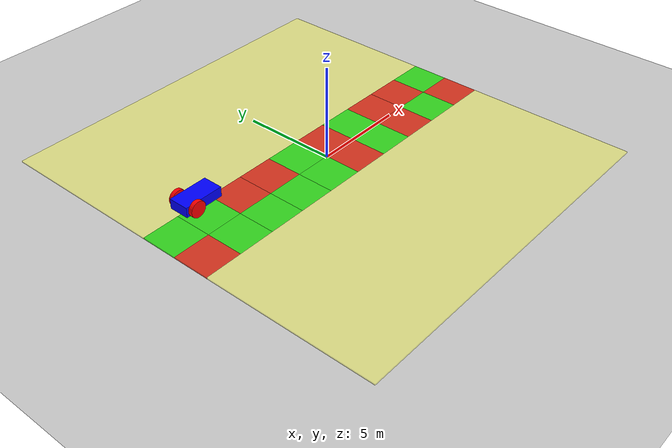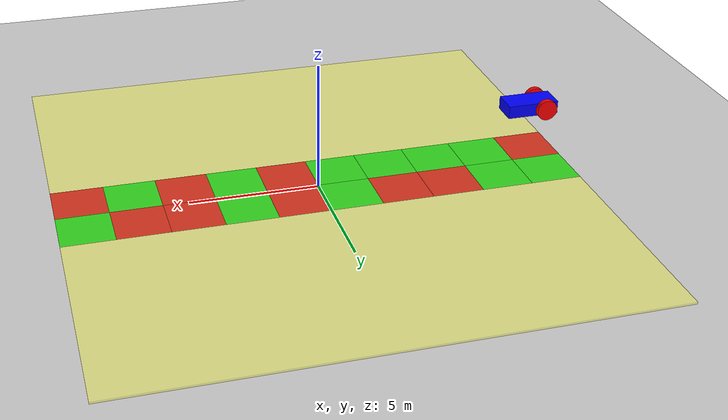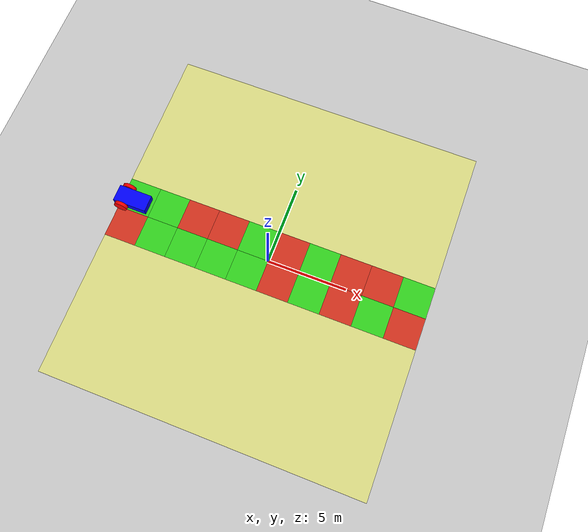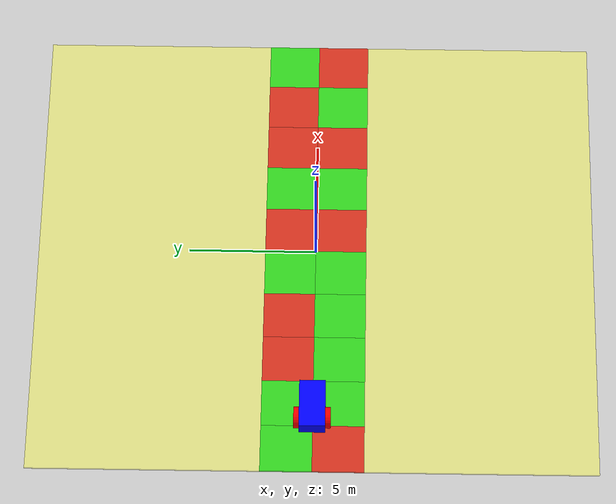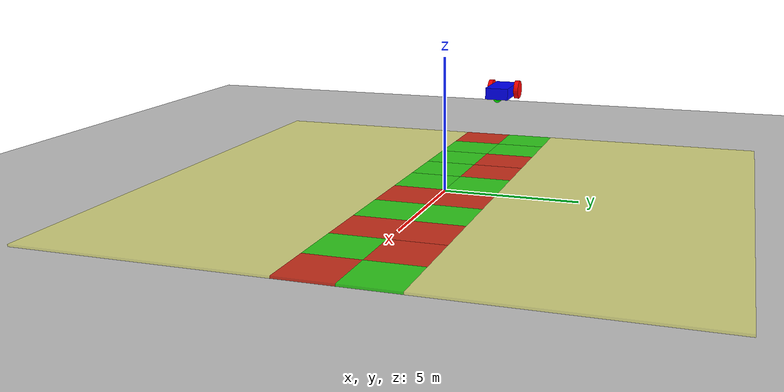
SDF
<?xml version="1.0" ?>
<sdf version="1.8">
    <world name="Moving_robot">
        <physics name="1ms" type="ignored">
            <max_step_size>0.1</max_step_size>
            <real_time_factor>1.0</real_time_factor>
        </physics>
        <plugin
            filename="libignition-gazebo-physics-system.so"
            name="ignition::gazebo::systems::Physics">
        </plugin>
        <plugin
            filename="ignition-gazebo-user-commands-system"
            name="ignition::gazebo::systems::UserCommands">
        </plugin>
        <plugin
            filename="ignition-gazebo-scene-broadcaster-system"
            name="ignition::gazebo::systems::SceneBroadcaster">
        </plugin>

        <light type="directional" name="sun">
            <cast_shadows>true</cast_shadows>
            <pose>0 0 10 0 0 0</pose>
            <diffuse>0.8 0.8 0.8 1</diffuse>
            <specular>0.2 0.2 0.2 1</specular>
            <attenuation>
                <range>1000</range>
                <constant>0.9</constant>
                <linear>0.01</linear>
                <quadratic>0.001</quadratic>
            </attenuation>
            <direction>-0.5 0.1 -0.9</direction>
        </light>

        <model name="ground_plane">
            <static>true</static>
            <link name="link">
                <collision name="collision">
                <geometry>
                    <plane>
                    <normal>0 0 1</normal>
                    </plane>
                </geometry>
                </collision>
                <visual name="visual">
                <geometry>
                    <plane>
                    <normal>0 0 1</normal>
                    <size>100 100</size>
                    </plane>
                </geometry>
                <material>
                    <ambient>0.8 0.8 0.8 1</ambient>
                    <diffuse>0.8 0.8 0.8 1</diffuse>
                    <specular>0.8 0.8 0.8 1</specular>
                </material>
                </visual>
            </link>
        </model>

        <model name='plank_left'>
            <pose>0 6.5 0 0 0 0</pose>
            <link name='link_1'>
            <pose>0 0 0 0 -0 0</pose>
            <inertial>
                <mass>54.0001</mass>
                <inertia>
                <ixx>364.546</ixx>
                <ixy>0</ixy>
                <ixz>0</ixz>
                <iyy>1800.06</iyy>
                <iyz>0</iyz>
                <izz>2164.51</izz>
                </inertia>
                <pose>0 0 0 0 -0 0</pose>
            </inertial>
            <visual name='visual'>
                <geometry>
                <box>
                    <size>20 9 0.1</size>
                </box>
                </geometry>
                <material>
                <ambient>1 1 0.3 0.5</ambient>
                <diffuse>1 1 0.3 0.5</diffuse>
                <specular>1 1 0.3 0.5</specular>
                </material>
            </visual>
            <collision name='collision'>
                <geometry>
                <box>
                    <size>20 9 0.1</size>
                </box>
                </geometry>
                <surface>
                <friction>
                    <ode>
                    <mu>1</mu>
                    <mu2>1</mu2>
                    </ode>
                </friction>
                </surface>
            </collision>
            <enable_wind>false</enable_wind>
            </link>
            <static>0</static>
            <allow_auto_disable>1</allow_auto_disable>
        </model>

        <model name='plank_right'>
            <pose>0 -6.5 0 0 0 0</pose>
            <link name='link_1'>
            <pose>0 0 0 0 -0 0</pose>
            <inertial>
                <mass>54.0001</mass>
                <inertia>
                <ixx>364.546</ixx>
                <ixy>0</ixy>
                <ixz>0</ixz>
                <iyy>1800.06</iyy>
                <iyz>0</iyz>
                <izz>2164.51</izz>
                </inertia>
                <pose>0 0 0 0 -0 0</pose>
            </inertial>
            <visual name='visual'>
                <geometry>
                <box>
                    <size>20 9 0.1</size>
                </box>
                </geometry>
                <material>
                <ambient>1 1 0.3 0.5</ambient>
                <diffuse>1 1 0.3 0.5</diffuse>
                <specular>1 1 0.3 0.5</specular>
                </material>
            </visual>
            <collision name='collision'>
                <geometry>
                <box>
                    <size>20 9 0.1</size>
                </box>
                </geometry>
                <surface>
                <friction>
                    <ode>
                    <mu>1</mu>
                    <mu2>1</mu2>
                    </ode>
                </friction>
                </surface>
            </collision>
            <enable_wind>false</enable_wind>
            </link>
            <static>0</static>
            <allow_auto_disable>1</allow_auto_disable>
        </model>

        <model name="tile_-5_-1">
            <pose>-9 -1 0 0 0 0</pose>
            <link name="tile_-5_-1">
                <pose>0 0 0 0 -0 0</pose>
                <inertial>
                <mass>260.134</mass>
                <inertia>
                    <ixx>86.8209</ixx>
                    <ixy>0</ixy>
                    <ixz>0</ixz>
                    <iyy>86.8213</iyy>
                    <iyz>0</iyz>
                    <izz>173.423</izz>
                </inertia>
                <pose>0 0 0 0 -0 0</pose>
                </inertial>
                <visual name='visual'>
                <geometry>
                    <box>
                    <size>2 2 0.1</size>
                    </box>
                </geometry>
                <material>
                    <ambient>0.9 0.1 0 0.8</ambient>
                    <diffuse>0.9 0.1 0 0.8</diffuse>
                    <specular>0.9 0.1 0 0.8</specular>
                </material>
                </visual>
                <collision name='collision'>
                <geometry>
                    <box>
                    <size>2 2 0.1</size>
                    </box>
                </geometry>
                <surface>
                    <friction>
                    <ode>
                        <mu>28.999999999999996</mu>
                        <mu2>41.0</mu2>
                    </ode>
                    </friction>
                    <contact/>
                </surface>
                </collision>
                <enable_wind>false</enable_wind>
            </link>
        </model>
        <model name="tile_-5_0">
            <pose>-9 1 0 0 0 0</pose>
            <link name="tile_-5_0">
                <pose>0 0 0 0 -0 0</pose>
                <inertial>
                <mass>260.134</mass>
                <inertia>
                    <ixx>86.8209</ixx>
                    <ixy>0</ixy>
                    <ixz>0</ixz>
                    <iyy>86.8213</iyy>
                    <iyz>0</iyz>
                    <izz>173.423</izz>
                </inertia>
                <pose>0 0 0 0 -0 0</pose>
                </inertial>
                <visual name='visual'>
                <geometry>
                    <box>
                    <size>2 2 0.1</size>
                    </box>
                </geometry>
                <material>
                    <ambient>0.1 0.9 0 0.8</ambient>
                    <diffuse>0.1 0.9 0 0.8</diffuse>
                    <specular>0.1 0.9 0 0.8</specular>
                </material>
                </visual>
                <collision name='collision'>
                <geometry>
                    <box>
                    <size>2 2 0.1</size>
                    </box>
                </geometry>
                <surface>
                    <friction>
                    <ode>
                        <mu>78.0</mu>
                        <mu2>32.0</mu2>
                    </ode>
                    </friction>
                    <contact/>
                </surface>
                </collision>
                <enable_wind>false</enable_wind>
            </link>
        </model>
        <model name="tile_-4_-1">
            <pose>-7 -1 0 0 0 0</pose>
            <link name="tile_-4_-1">
                <pose>0 0 0 0 -0 0</pose>
                <inertial>
                <mass>260.134</mass>
                <inertia>
                    <ixx>86.8209</ixx>
                    <ixy>0</ixy>
                    <ixz>0</ixz>
                    <iyy>86.8213</iyy>
                    <iyz>0</iyz>
                    <izz>173.423</izz>
                </inertia>
                <pose>0 0 0 0 -0 0</pose>
                </inertial>
                <visual name='visual'>
                <geometry>
                    <box>
                    <size>2 2 0.1</size>
                    </box>
                </geometry>
                <material>
                    <ambient>0.1 0.9 0 0.8</ambient>
                    <diffuse>0.1 0.9 0 0.8</diffuse>
                    <specular>0.1 0.9 0 0.8</specular>
                </material>
                </visual>
                <collision name='collision'>
                <geometry>
                    <box>
                    <size>2 2 0.1</size>
                    </box>
                </geometry>
                <surface>
                    <friction>
                    <ode>
                        <mu>50.0</mu>
                        <mu2>95.0</mu2>
                    </ode>
                    </friction>
                    <contact/>
                </surface>
                </collision>
                <enable_wind>false</enable_wind>
            </link>
        </model>
        <model name="tile_-4_0">
            <pose>-7 1 0 0 0 0</pose>
            <link name="tile_-4_0">
                <pose>0 0 0 0 -0 0</pose>
                <inertial>
                <mass>260.134</mass>
                <inertia>
                    <ixx>86.8209</ixx>
                    <ixy>0</ixy>
                    <ixz>0</ixz>
                    <iyy>86.8213</iyy>
                    <iyz>0</iyz>
                    <izz>173.423</izz>
                </inertia>
                <pose>0 0 0 0 -0 0</pose>
                </inertial>
                <visual name='visual'>
                <geometry>
                    <box>
                    <size>2 2 0.1</size>
                    </box>
                </geometry>
                <material>
                    <ambient>0.1 0.9 0 0.8</ambient>
                    <diffuse>0.1 0.9 0 0.8</diffuse>
                    <specular>0.1 0.9 0 0.8</specular>
                </material>
                </visual>
                <collision name='collision'>
                <geometry>
                    <box>
                    <size>2 2 0.1</size>
                    </box>
                </geometry>
                <surface>
                    <friction>
                    <ode>
                        <mu>71.0</mu>
                        <mu2>86.0</mu2>
                    </ode>
                    </friction>
                    <contact/>
                </surface>
                </collision>
                <enable_wind>false</enable_wind>
            </link>
        </model>
        <model name="tile_-3_-1">
            <pose>-5 -1 0 0 0 0</pose>
            <link name="tile_-3_-1">
                <pose>0 0 0 0 -0 0</pose>
                <inertial>
                <mass>260.134</mass>
                <inertia>
                    <ixx>86.8209</ixx>
                    <ixy>0</ixy>
                    <ixz>0</ixz>
                    <iyy>86.8213</iyy>
                    <iyz>0</iyz>
                    <izz>173.423</izz>
                </inertia>
                <pose>0 0 0 0 -0 0</pose>
                </inertial>
                <visual name='visual'>
                <geometry>
                    <box>
                    <size>2 2 0.1</size>
                    </box>
                </geometry>
                <material>
                    <ambient>0.1 0.9 0 0.8</ambient>
                    <diffuse>0.1 0.9 0 0.8</diffuse>
                    <specular>0.1 0.9 0 0.8</specular>
                </material>
                </visual>
                <collision name='collision'>
                <geometry>
                    <box>
                    <size>2 2 0.1</size>
                    </box>
                </geometry>
                <surface>
                    <friction>
                    <ode>
                        <mu>79.0</mu>
                        <mu2>16.0</mu2>
                    </ode>
                    </friction>
                    <contact/>
                </surface>
                </collision>
                <enable_wind>false</enable_wind>
            </link>
        </model>
        <model name="tile_-3_0">
            <pose>-5 1 0 0 0 0</pose>
            <link name="tile_-3_0">
                <pose>0 0 0 0 -0 0</pose>
                <inertial>
                <mass>260.134</mass>
                <inertia>
                    <ixx>86.8209</ixx>
                    <ixy>0</ixy>
                    <ixz>0</ixz>
                    <iyy>86.8213</iyy>
                    <iyz>0</iyz>
                    <izz>173.423</izz>
                </inertia>
                <pose>0 0 0 0 -0 0</pose>
                </inertial>
                <visual name='visual'>
                <geometry>
                    <box>
                    <size>2 2 0.1</size>
                    </box>
                </geometry>
                <material>
                    <ambient>0.9 0.1 0 0.8</ambient>
                    <diffuse>0.9 0.1 0 0.8</diffuse>
                    <specular>0.9 0.1 0 0.8</specular>
                </material>
                </visual>
                <collision name='collision'>
                <geometry>
                    <box>
                    <size>2 2 0.1</size>
                    </box>
                </geometry>
                <surface>
                    <friction>
                    <ode>
                        <mu>0.0</mu>
                        <mu2>14.000000000000002</mu2>
                    </ode>
                    </friction>
                    <contact/>
                </surface>
                </collision>
                <enable_wind>false</enable_wind>
            </link>
        </model>
        <model name="tile_-2_-1">
            <pose>-3 -1 0 0 0 0</pose>
            <link name="tile_-2_-1">
                <pose>0 0 0 0 -0 0</pose>
                <inertial>
                <mass>260.134</mass>
                <inertia>
                    <ixx>86.8209</ixx>
                    <ixy>0</ixy>
                    <ixz>0</ixz>
                    <iyy>86.8213</iyy>
                    <iyz>0</iyz>
                    <izz>173.423</izz>
                </inertia>
                <pose>0 0 0 0 -0 0</pose>
                </inertial>
                <visual name='visual'>
                <geometry>
                    <box>
                    <size>2 2 0.1</size>
                    </box>
                </geometry>
                <material>
                    <ambient>0.1 0.9 0 0.8</ambient>
                    <diffuse>0.1 0.9 0 0.8</diffuse>
                    <specular>0.1 0.9 0 0.8</specular>
                </material>
                </visual>
                <collision name='collision'>
                <geometry>
                    <box>
                    <size>2 2 0.1</size>
                    </box>
                </geometry>
                <surface>
                    <friction>
                    <ode>
                        <mu>95.0</mu>
                        <mu2>61.0</mu2>
                    </ode>
                    </friction>
                    <contact/>
                </surface>
                </collision>
                <enable_wind>false</enable_wind>
            </link>
        </model>
        <model name="tile_-2_0">
            <pose>-3 1 0 0 0 0</pose>
            <link name="tile_-2_0">
                <pose>0 0 0 0 -0 0</pose>
                <inertial>
                <mass>260.134</mass>
                <inertia>
                    <ixx>86.8209</ixx>
                    <ixy>0</ixy>
                    <ixz>0</ixz>
                    <iyy>86.8213</iyy>
                    <iyz>0</iyz>
                    <izz>173.423</izz>
                </inertia>
                <pose>0 0 0 0 -0 0</pose>
                </inertial>
                <visual name='visual'>
                <geometry>
                    <box>
                    <size>2 2 0.1</size>
                    </box>
                </geometry>
                <material>
                    <ambient>0.9 0.1 0 0.8</ambient>
                    <diffuse>0.9 0.1 0 0.8</diffuse>
                    <specular>0.9 0.1 0 0.8</specular>
                </material>
                </visual>
                <collision name='collision'>
                <geometry>
                    <box>
                    <size>2 2 0.1</size>
                    </box>
                </geometry>
                <surface>
                    <friction>
                    <ode>
                        <mu>44.0</mu>
                        <mu2>88.0</mu2>
                    </ode>
                    </friction>
                    <contact/>
                </surface>
                </collision>
                <enable_wind>false</enable_wind>
            </link>
        </model>
        <model name="tile_-1_-1">
            <pose>-1 -1 0 0 0 0</pose>
            <link name="tile_-1_-1">
                <pose>0 0 0 0 -0 0</pose>
                <inertial>
                <mass>260.134</mass>
                <inertia>
                    <ixx>86.8209</ixx>
                    <ixy>0</ixy>
                    <ixz>0</ixz>
                    <iyy>86.8213</iyy>
                    <iyz>0</iyz>
                    <izz>173.423</izz>
                </inertia>
                <pose>0 0 0 0 -0 0</pose>
                </inertial>
                <visual name='visual'>
                <geometry>
                    <box>
                    <size>2 2 0.1</size>
                    </box>
                </geometry>
                <material>
                    <ambient>0.1 0.9 0 0.8</ambient>
                    <diffuse>0.1 0.9 0 0.8</diffuse>
                    <specular>0.1 0.9 0 0.8</specular>
                </material>
                </visual>
                <collision name='collision'>
                <geometry>
                    <box>
                    <size>2 2 0.1</size>
                    </box>
                </geometry>
                <surface>
                    <friction>
                    <ode>
                        <mu>70.0</mu>
                        <mu2>67.0</mu2>
                    </ode>
                    </friction>
                    <contact/>
                </surface>
                </collision>
                <enable_wind>false</enable_wind>
            </link>
        </model>
        <model name="tile_-1_0">
            <pose>-1 1 0 0 0 0</pose>
            <link name="tile_-1_0">
                <pose>0 0 0 0 -0 0</pose>
                <inertial>
                <mass>260.134</mass>
                <inertia>
                    <ixx>86.8209</ixx>
                    <ixy>0</ixy>
                    <ixz>0</ixz>
                    <iyy>86.8213</iyy>
                    <iyz>0</iyz>
                    <izz>173.423</izz>
                </inertia>
                <pose>0 0 0 0 -0 0</pose>
                </inertial>
                <visual name='visual'>
                <geometry>
                    <box>
                    <size>2 2 0.1</size>
                    </box>
                </geometry>
                <material>
                    <ambient>0.1 0.9 0 0.8</ambient>
                    <diffuse>0.1 0.9 0 0.8</diffuse>
                    <specular>0.1 0.9 0 0.8</specular>
                </material>
                </visual>
                <collision name='collision'>
                <geometry>
                    <box>
                    <size>2 2 0.1</size>
                    </box>
                </geometry>
                <surface>
                    <friction>
                    <ode>
                        <mu>73.0</mu>
                        <mu2>81.0</mu2>
                    </ode>
                    </friction>
                    <contact/>
                </surface>
                </collision>
                <enable_wind>false</enable_wind>
            </link>
        </model>
        <model name="tile_0_-1">
            <pose>1 -1 0 0 0 0</pose>
            <link name="tile_0_-1">
                <pose>0 0 0 0 -0 0</pose>
                <inertial>
                <mass>260.134</mass>
                <inertia>
                    <ixx>86.8209</ixx>
                    <ixy>0</ixy>
                    <ixz>0</ixz>
                    <iyy>86.8213</iyy>
                    <iyz>0</iyz>
                    <izz>173.423</izz>
                </inertia>
                <pose>0 0 0 0 -0 0</pose>
                </inertial>
                <visual name='visual'>
                <geometry>
                    <box>
                    <size>2 2 0.1</size>
                    </box>
                </geometry>
                <material>
                    <ambient>0.9 0.1 0 0.8</ambient>
                    <diffuse>0.9 0.1 0 0.8</diffuse>
                    <specular>0.9 0.1 0 0.8</specular>
                </material>
                </visual>
                <collision name='collision'>
                <geometry>
                    <box>
                    <size>2 2 0.1</size>
                    </box>
                </geometry>
                <surface>
                    <friction>
                    <ode>
                        <mu>34.0</mu>
                        <mu2>37.0</mu2>
                    </ode>
                    </friction>
                    <contact/>
                </surface>
                </collision>
                <enable_wind>false</enable_wind>
            </link>
        </model>
        <model name="tile_0_0">
            <pose>1 1 0 0 0 0</pose>
            <link name="tile_0_0">
                <pose>0 0 0 0 -0 0</pose>
                <inertial>
                <mass>260.134</mass>
                <inertia>
                    <ixx>86.8209</ixx>
                    <ixy>0</ixy>
                    <ixz>0</ixz>
                    <iyy>86.8213</iyy>
                    <iyz>0</iyz>
                    <izz>173.423</izz>
                </inertia>
                <pose>0 0 0 0 -0 0</pose>
                </inertial>
                <visual name='visual'>
                <geometry>
                    <box>
                    <size>2 2 0.1</size>
                    </box>
                </geometry>
                <material>
                    <ambient>0.9 0.1 0 0.8</ambient>
                    <diffuse>0.9 0.1 0 0.8</diffuse>
                    <specular>0.9 0.1 0 0.8</specular>
                </material>
                </visual>
                <collision name='collision'>
                <geometry>
                    <box>
                    <size>2 2 0.1</size>
                    </box>
                </geometry>
                <surface>
                    <friction>
                    <ode>
                        <mu>30.0</mu>
                        <mu2>48.0</mu2>
                    </ode>
                    </friction>
                    <contact/>
                </surface>
                </collision>
                <enable_wind>false</enable_wind>
            </link>
        </model>
        <model name="tile_1_-1">
            <pose>3 -1 0 0 0 0</pose>
            <link name="tile_1_-1">
                <pose>0 0 0 0 -0 0</pose>
                <inertial>
                <mass>260.134</mass>
                <inertia>
                    <ixx>86.8209</ixx>
                    <ixy>0</ixy>
                    <ixz>0</ixz>
                    <iyy>86.8213</iyy>
                    <iyz>0</iyz>
                    <izz>173.423</izz>
                </inertia>
                <pose>0 0 0 0 -0 0</pose>
                </inertial>
                <visual name='visual'>
                <geometry>
                    <box>
                    <size>2 2 0.1</size>
                    </box>
                </geometry>
                <material>
                    <ambient>0.1 0.9 0 0.8</ambient>
                    <diffuse>0.1 0.9 0 0.8</diffuse>
                    <specular>0.1 0.9 0 0.8</specular>
                </material>
                </visual>
                <collision name='collision'>
                <geometry>
                    <box>
                    <size>2 2 0.1</size>
                    </box>
                </geometry>
                <surface>
                    <friction>
                    <ode>
                        <mu>62.0</mu>
                        <mu2>93.0</mu2>
                    </ode>
                    </friction>
                    <contact/>
                </surface>
                </collision>
                <enable_wind>false</enable_wind>
            </link>
        </model>
        <model name="tile_1_0">
            <pose>3 1 0 0 0 0</pose>
            <link name="tile_1_0">
                <pose>0 0 0 0 -0 0</pose>
                <inertial>
                <mass>260.134</mass>
                <inertia>
                    <ixx>86.8209</ixx>
                    <ixy>0</ixy>
                    <ixz>0</ixz>
                    <iyy>86.8213</iyy>
                    <iyz>0</iyz>
                    <izz>173.423</izz>
                </inertia>
                <pose>0 0 0 0 -0 0</pose>
                </inertial>
                <visual name='visual'>
                <geometry>
                    <box>
                    <size>2 2 0.1</size>
                    </box>
                </geometry>
                <material>
                    <ambient>0.1 0.9 0 0.8</ambient>
                    <diffuse>0.1 0.9 0 0.8</diffuse>
                    <specular>0.1 0.9 0 0.8</specular>
                </material>
                </visual>
                <collision name='collision'>
                <geometry>
                    <box>
                    <size>2 2 0.1</size>
                    </box>
                </geometry>
                <surface>
                    <friction>
                    <ode>
                        <mu>89.0</mu>
                        <mu2>39.0</mu2>
                    </ode>
                    </friction>
                    <contact/>
                </surface>
                </collision>
                <enable_wind>false</enable_wind>
            </link>
        </model>
        <model name="tile_2_-1">
            <pose>5 -1 0 0 0 0</pose>
            <link name="tile_2_-1">
                <pose>0 0 0 0 -0 0</pose>
                <inertial>
                <mass>260.134</mass>
                <inertia>
                    <ixx>86.8209</ixx>
                    <ixy>0</ixy>
                    <ixz>0</ixz>
                    <iyy>86.8213</iyy>
                    <iyz>0</iyz>
                    <izz>173.423</izz>
                </inertia>
                <pose>0 0 0 0 -0 0</pose>
                </inertial>
                <visual name='visual'>
                <geometry>
                    <box>
                    <size>2 2 0.1</size>
                    </box>
                </geometry>
                <material>
                    <ambient>0.9 0.1 0 0.8</ambient>
                    <diffuse>0.9 0.1 0 0.8</diffuse>
                    <specular>0.9 0.1 0 0.8</specular>
                </material>
                </visual>
                <collision name='collision'>
                <geometry>
                    <box>
                    <size>2 2 0.1</size>
                    </box>
                </geometry>
                <surface>
                    <friction>
                    <ode>
                        <mu>25.0</mu>
                        <mu2>54.0</mu2>
                    </ode>
                    </friction>
                    <contact/>
                </surface>
                </collision>
                <enable_wind>false</enable_wind>
            </link>
        </model>
        <model name="tile_2_0">
            <pose>5 1 0 0 0 0</pose>
            <link name="tile_2_0">
                <pose>0 0 0 0 -0 0</pose>
                <inertial>
                <mass>260.134</mass>
                <inertia>
                    <ixx>86.8209</ixx>
                    <ixy>0</ixy>
                    <ixz>0</ixz>
                    <iyy>86.8213</iyy>
                    <iyz>0</iyz>
                    <izz>173.423</izz>
                </inertia>
                <pose>0 0 0 0 -0 0</pose>
                </inertial>
                <visual name='visual'>
                <geometry>
                    <box>
                    <size>2 2 0.1</size>
                    </box>
                </geometry>
                <material>
                    <ambient>0.9 0.1 0 0.8</ambient>
                    <diffuse>0.9 0.1 0 0.8</diffuse>
                    <specular>0.9 0.1 0 0.8</specular>
                </material>
                </visual>
                <collision name='collision'>
                <geometry>
                    <box>
                    <size>2 2 0.1</size>
                    </box>
                </geometry>
                <surface>
                    <friction>
                    <ode>
                        <mu>24.0</mu>
                        <mu2>10.0</mu2>
                    </ode>
                    </friction>
                    <contact/>
                </surface>
                </collision>
                <enable_wind>false</enable_wind>
            </link>
        </model>
        <model name="tile_3_-1">
            <pose>7 -1 0 0 0 0</pose>
            <link name="tile_3_-1">
                <pose>0 0 0 0 -0 0</pose>
                <inertial>
                <mass>260.134</mass>
                <inertia>
                    <ixx>86.8209</ixx>
                    <ixy>0</ixy>
                    <ixz>0</ixz>
                    <iyy>86.8213</iyy>
                    <iyz>0</iyz>
                    <izz>173.423</izz>
                </inertia>
                <pose>0 0 0 0 -0 0</pose>
                </inertial>
                <visual name='visual'>
                <geometry>
                    <box>
                    <size>2 2 0.1</size>
                    </box>
                </geometry>
                <material>
                    <ambient>0.1 0.9 0 0.8</ambient>
                    <diffuse>0.1 0.9 0 0.8</diffuse>
                    <specular>0.1 0.9 0 0.8</specular>
                </material>
                </visual>
                <collision name='collision'>
                <geometry>
                    <box>
                    <size>2 2 0.1</size>
                    </box>
                </geometry>
                <surface>
                    <friction>
                    <ode>
                        <mu>81.0</mu>
                        <mu2>83.0</mu2>
                    </ode>
                    </friction>
                    <contact/>
                </surface>
                </collision>
                <enable_wind>false</enable_wind>
            </link>
        </model>
        <model name="tile_3_0">
            <pose>7 1 0 0 0 0</pose>
            <link name="tile_3_0">
                <pose>0 0 0 0 -0 0</pose>
                <inertial>
                <mass>260.134</mass>
                <inertia>
                    <ixx>86.8209</ixx>
                    <ixy>0</ixy>
                    <ixz>0</ixz>
                    <iyy>86.8213</iyy>
                    <iyz>0</iyz>
                    <izz>173.423</izz>
                </inertia>
                <pose>0 0 0 0 -0 0</pose>
                </inertial>
                <visual name='visual'>
                <geometry>
                    <box>
                    <size>2 2 0.1</size>
                    </box>
                </geometry>
                <material>
                    <ambient>0.9 0.1 0 0.8</ambient>
                    <diffuse>0.9 0.1 0 0.8</diffuse>
                    <specular>0.9 0.1 0 0.8</specular>
                </material>
                </visual>
                <collision name='collision'>
                <geometry>
                    <box>
                    <size>2 2 0.1</size>
                    </box>
                </geometry>
                <surface>
                    <friction>
                    <ode>
                        <mu>3.0</mu>
                        <mu2>31.0</mu2>
                    </ode>
                    </friction>
                    <contact/>
                </surface>
                </collision>
                <enable_wind>false</enable_wind>
            </link>
        </model>
        <model name="tile_4_-1">
            <pose>9 -1 0 0 0 0</pose>
            <link name="tile_4_-1">
                <pose>0 0 0 0 -0 0</pose>
                <inertial>
                <mass>260.134</mass>
                <inertia>
                    <ixx>86.8209</ixx>
                    <ixy>0</ixy>
                    <ixz>0</ixz>
                    <iyy>86.8213</iyy>
                    <iyz>0</iyz>
                    <izz>173.423</izz>
                </inertia>
                <pose>0 0 0 0 -0 0</pose>
                </inertial>
                <visual name='visual'>
                <geometry>
                    <box>
                    <size>2 2 0.1</size>
                    </box>
                </geometry>
                <material>
                    <ambient>0.9 0.1 0 0.8</ambient>
                    <diffuse>0.9 0.1 0 0.8</diffuse>
                    <specular>0.9 0.1 0 0.8</specular>
                </material>
                </visual>
                <collision name='collision'>
                <geometry>
                    <box>
                    <size>2 2 0.1</size>
                    </box>
                </geometry>
                <surface>
                    <friction>
                    <ode>
                        <mu>45.0</mu>
                        <mu2>82.0</mu2>
                    </ode>
                    </friction>
                    <contact/>
                </surface>
                </collision>
                <enable_wind>false</enable_wind>
            </link>
        </model>
        <model name="tile_4_0">
            <pose>9 1 0 0 0 0</pose>
            <link name="tile_4_0">
                <pose>0 0 0 0 -0 0</pose>
                <inertial>
                <mass>260.134</mass>
                <inertia>
                    <ixx>86.8209</ixx>
                    <ixy>0</ixy>
                    <ixz>0</ixz>
                    <iyy>86.8213</iyy>
                    <iyz>0</iyz>
                    <izz>173.423</izz>
                </inertia>
                <pose>0 0 0 0 -0 0</pose>
                </inertial>
                <visual name='visual'>
                <geometry>
                    <box>
                    <size>2 2 0.1</size>
                    </box>
                </geometry>
                <material>
                    <ambient>0.1 0.9 0 0.8</ambient>
                    <diffuse>0.1 0.9 0 0.8</diffuse>
                    <specular>0.1 0.9 0 0.8</specular>
                </material>
                </visual>
                <collision name='collision'>
                <geometry>
                    <box>
                    <size>2 2 0.1</size>
                    </box>
                </geometry>
                <surface>
                    <friction>
                    <ode>
                        <mu>64.0</mu>
                        <mu2>68.0</mu2>
                    </ode>
                    </friction>
                    <contact/>
                </surface>
                </collision>
                <enable_wind>false</enable_wind>
            </link>
        </model>

        <model name='vehicle_blue' canonical_link='chassis'>
            <pose relative_to='world'>-9 -0 2 0 0 0</pose>   <!--the pose is relative to the world by default-->

            <link name='chassis'>
                <pose relative_to='__model__'>0.5 0 0.4 0 0 0</pose>
                <inertial> <!--inertial properties of the link mass, inertia matix-->
                    <mass>1.14395</mass>
                    <inertia>
                        <ixx>0.126164</ixx>
                        <ixy>0</ixy>
                        <ixz>0</ixz>
                        <iyy>0.416519</iyy>
                        <iyz>0</iyz>
                        <izz>0.481014</izz>
                    </inertia>
                </inertial>
                <visual name='visual'>
                    <geometry>
                        <box>
                            <size>2.0 1.0 0.5</size> <!--question: this size is in meter-->
                        </box>
                    </geometry>
                    <!--let's add color to our link-->
                    <material>
                        <ambient>0.0 0.0 1.0 1</ambient>
                        <diffuse>0.0 0.0 1.0 1</diffuse>
                        <specular>0.0 0.0 1.0 1</specular>
                    </material>
                </visual>
                <collision name='collision'> <!--todo: describe why we need the collision-->
                    <geometry>
                        <box>
                            <size>2.0 1.0 0.5</size>
                        </box>
                    </geometry>
                </collision>
            </link>

            <!--let's build the left wheel-->
            <link name='left_wheel'>
                <pose relative_to="chassis">-0.5 0.6 0 -1.5707 0 0</pose> <!--angles are in radian-->
                <inertial>
                    <mass>2</mass>
                    <inertia>
                        <ixx>0.145833</ixx>
                        <ixy>0</ixy>
                        <ixz>0</ixz>
                        <iyy>0.145833</iyy>
                        <iyz>0</iyz>
                        <izz>0.125</izz>
                    </inertia>
                </inertial>
                <visual name='visual'>
                    <geometry>
                        <cylinder>
                            <radius>0.4</radius>
                            <length>0.2</length>
                        </cylinder>
                    </geometry>
                    <material>
                        <ambient>1.0 0.0 0.0 1</ambient>
                        <diffuse>1.0 0.0 0.0 1</diffuse>
                        <specular>1.0 0.0 0.0 1</specular>
                    </material>
                </visual>
                <collision name='collision'>
                    <geometry>
                        <cylinder>
                            <radius>0.4</radius>
                            <length>0.2</length>
                        </cylinder>
                    </geometry>
                </collision>
            </link>

            <!--copy and paste for right wheel but change position-->
            <link name='right_wheel'>
                <pose relative_to="chassis">-0.5 -0.6 0 -1.5707 0 0</pose> <!--angles are in radian-->
                <inertial>
                    <mass>1</mass>
                    <inertia>
                        <ixx>0.145833</ixx>
                        <ixy>0</ixy>
                        <ixz>0</ixz>
                        <iyy>0.145833</iyy>
                        <iyz>0</iyz>
                        <izz>0.125</izz>
                    </inertia>
                </inertial>
                <visual name='visual'>
                    <geometry>
                        <cylinder>
                            <radius>0.4</radius>
                            <length>0.2</length>
                        </cylinder>
                    </geometry>
                    <material>
                        <ambient>1.0 0.0 0.0 1</ambient>
                        <diffuse>1.0 0.0 0.0 1</diffuse>
                        <specular>1.0 0.0 0.0 1</specular>
                    </material>
                </visual>
                <collision name='collision'>
                    <geometry>
                        <cylinder>
                            <radius>0.4</radius>
                            <length>0.2</length>
                        </cylinder>
                    </geometry>
                </collision>
            </link>

            <frame name="caster_frame" attached_to='chassis'>
                <pose>0.8 0 -0.2 0 0 0</pose>
            </frame>

            <!--caster wheel-->
            <link name='caster'>
                <pose relative_to='caster_frame'/>
                <inertial>
                    <mass>1</mass>
                    <inertia>
                        <ixx>0.1</ixx>
                        <ixy>0</ixy>
                        <ixz>0</ixz>
                        <iyy>0.1</iyy>
                        <iyz>0</iyz>
                        <izz>0.1</izz>
                    </inertia>
                </inertial>
                <visual name='visual'>
                    <geometry>
                        <sphere>
                            <radius>0.2</radius>
                        </sphere>
                    </geometry>
                    <material>
                        <ambient>0.0 1 0.0 1</ambient>
                        <diffuse>0.0 1 0.0 1</diffuse>
                        <specular>0.0 1 0.0 1</specular>
                    </material>
                </visual>
                <collision name='collision'>
                    <geometry>
                        <sphere>
                            <radius>0.2</radius>
                        </sphere>
                    </geometry>
                </collision>
            </link>

            <!--connecting these links together using joints-->
            <joint name='left_wheel_joint' type='revolute'> <!--continous joint is not supported yet-->
                <pose relative_to='left_wheel'/>
                <parent>chassis</parent>
                <child>left_wheel</child>
                <axis>
                    <xyz expressed_in='__model__'>0 1 0</xyz> <!--can be defined as any frame or even arbitrary frames-->
                    <limit>
                        <lower>-1.79769e+308</lower>    <!--negative infinity-->
                        <upper>1.79769e+308</upper>     <!--positive infinity-->
                    </limit>
                </axis>
            </joint>

            <joint name='right_wheel_joint' type='revolute'>
                <pose relative_to='right_wheel'/>
                <parent>chassis</parent>
                <child>right_wheel</child>
                <axis>
                    <xyz expressed_in='__model__'>0 1 0</xyz>
                    <limit>
                        <lower>-1.79769e+308</lower>    <!--negative infinity-->
                        <upper>1.79769e+308</upper>     <!--positive infinity-->
                    </limit>
                </axis>
            </joint>

            <!--different type of joints ball joint--> <!--defult value is the child-->
            <joint name='caster_wheel' type='ball'>
                <parent>chassis</parent>
                <child>caster</child>
            </joint>

            <!--diff drive plugin-->
            <plugin
                filename="ignition-gazebo-diff-drive-system"
                name="ignition::gazebo::systems::DiffDrive">
                <left_joint>left_wheel_joint</left_joint>
                <right_joint>right_wheel_joint</right_joint>
                <wheel_separation>1.2</wheel_separation>
                <wheel_radius>0.4</wheel_radius>
                <odom_publish_frequency>1</odom_publish_frequency>
                <topic>cmd_vel</topic>
            </plugin>
        </model>

    </world>
</sdf>
